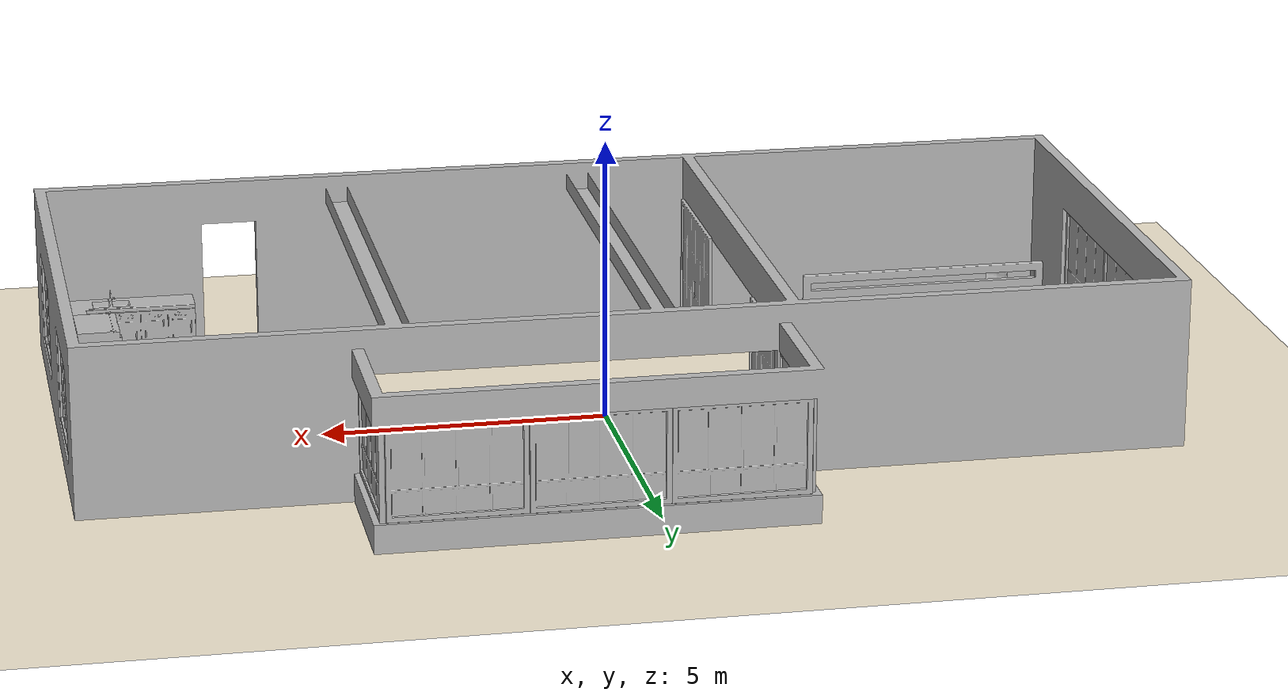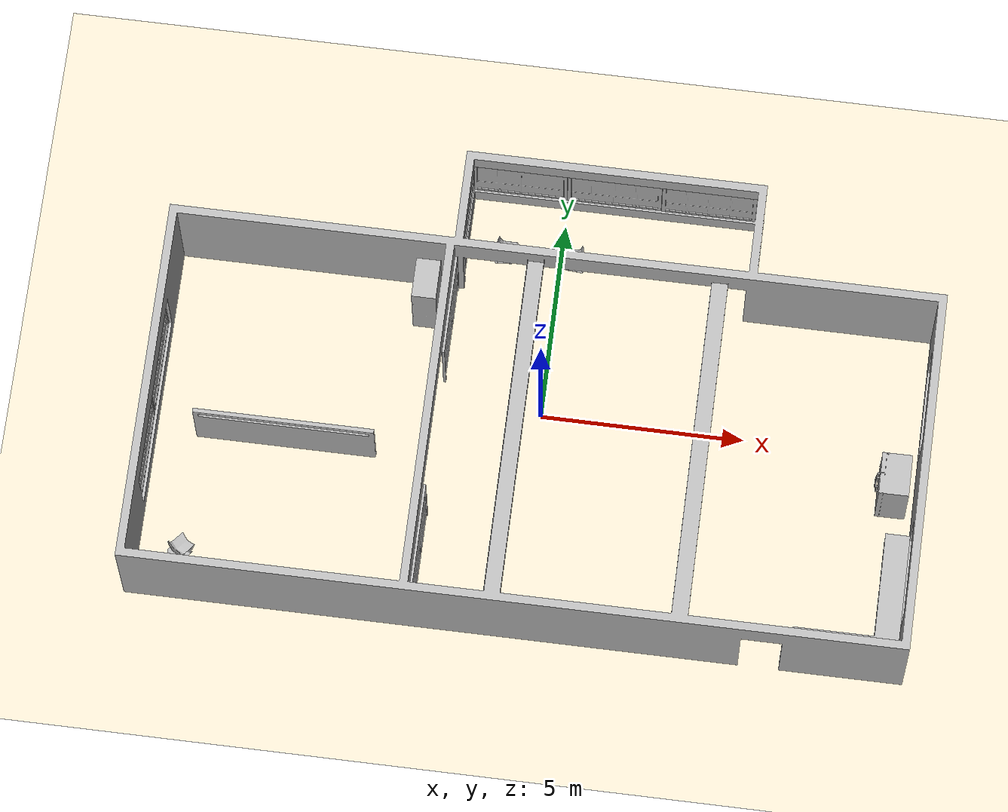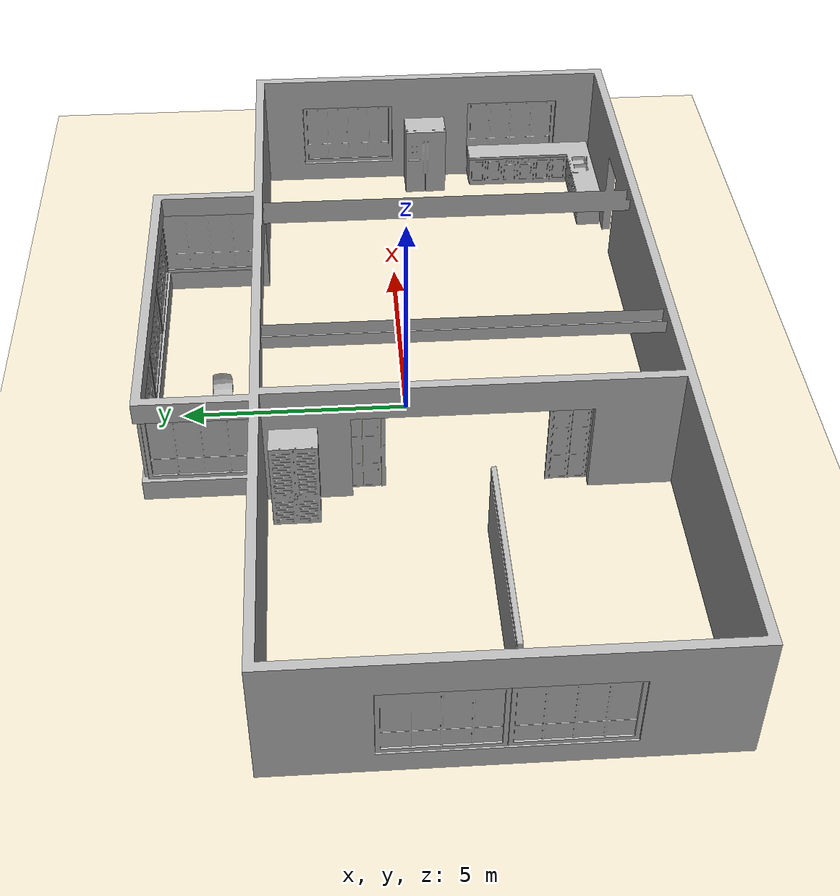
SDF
<sdf version="1.8">
 <world name="gazebo_world">
  <physics name="1ms" type="ignored">
   <max_step_size>0.001</max_step_size>
   <real_time_factor>1.0</real_time_factor>
   <real_time_update_rate>1000</real_time_update_rate>
  </physics>
  <plugin name="gz::sim::systems::Physics" filename="gz-sim-physics-system"/>
  <plugin name="gz::sim::systems::UserCommands" filename="gz-sim-user-commands-system"/>
  <plugin name="gz::sim::systems::SceneBroadcaster" filename="gz-sim-scene-broadcaster-system"/>
  <plugin filename="gz-sim-sensors-system" name="gz::sim::systems::Sensors">
   <render_engine>ogre2</render_engine>
  </plugin>
  <plugin filename="libgz-sim-contact-system.so" name="gz::sim::systems::Contact"/>
  <scene><ambient>1.0 1.0 1.0</ambient><background>0.8 0.8 0.8</background></scene>
  <light type="directional" name="sun">
   <pose>0 0 10 0 0 0</pose>
   <diffuse>0.8 0.8 0.8 1</diffuse>
   <specular>0.2 0.2 0.2 1</specular>
   <attenuation>
    <range>1000</range>
    <constant>0.9</constant>
    <linear>0.01</linear>
    <quadratic>0.001</quadratic>
   </attenuation>
   <direction>-0.5 0.1 -0.9</direction>
  </light>
  <model name="ground_plane">
   <static>true</static>
   <link name="link">
    <collision name="collision">
     <geometry><plane><normal>0 0 1</normal><size>100 100</size></plane></geometry>
    </collision>
    <visual name="visual">
     <geometry><plane><normal>0 0 1</normal><size>100 100</size></plane></geometry>
     <material>
      <ambient>0.94 0.90 0.81 1</ambient>
      <diffuse>0.94 0.90 0.81 1</diffuse>
      <specular>1 1 1 0</specular>
     </material>
    </visual>
   </link>
  </model>
  <model name="ChairD_01_001">
   <static>true</static>
   <include><uri>aws_robomaker_residential_ChairD_01</uri></include>
   <pose>-1.380775 4.104456 0 0 -0 0</pose>
  </model>
  <model name="ChairD_01_002">
   <static>true</static>
   <include><uri>aws_robomaker_residential_ChairD_01</uri></include>
   <pose>0.325214 4.104456 0 0 -0 -3.138741</pose>
  </model>
  <model name="ChairD_01_003">
   <static>true</static>
   <include><uri>aws_robomaker_residential_ChairD_01</uri></include>
   <pose>-8.270775 -4.504456 0 0 -0 0.869673</pose>
  </model>
  <model name="FoldingDoor_01_001">
   <static>true</static>
   <include><uri>aws_robomaker_residential_FoldingDoor_01</uri></include>
   <pose>-2.461096 1.844219 0.041881 0 -0 0</pose>
  </model>
  <model name="FoldingDoor_01_002">
   <static>true</static>
   <include><uri>aws_robomaker_residential_FoldingDoor_01</uri></include>
   <pose>-2.461096 -4.053320 0.041881 0 -0 0</pose>
  </model>
  <model name="HouseWallB_01_001">
   <static>true</static>
   <include><uri>aws_robomaker_residential_HouseWallB_01</uri></include>
  </model>
  <model name="KitchenCabinet_01_001">
   <static>true</static>
   <include><uri>aws_robomaker_residential_KitchenCabinet_01</uri></include>
   <pose>8.002009 -3.836509 0.012068 0 -0 -3.140001</pose>
  </model>
  <model name="Refrigerator_01_001">
   <static>true</static>
   <include><uri>aws_robomaker_residential_Refrigerator_01</uri></include>
   <pose>8.702731 -1.032031 0 0 -0 -1.563499</pose>
  </model>
  <model name="RoomWall_01_001">
   <static>true</static>
   <include><uri>aws_robomaker_residential_RoomWall_01</uri></include>
   <pose>-6.097550 -1.496180 0.028124 0 -0 0</pose>
  </model>
  <model name="Wardrobe_01_001">
   <static>true</static>
   <include><uri>aws_robomaker_residential_Wardrobe_01</uri></include>
   <pose>-3.146710 2.476204 0.000704 0 -0 -1.569673</pose>
  </model>
  <model name="RoomWindow_01_001">
   <static>true</static>
   <include><uri>aws_robomaker_residential_RoomWindow_01</uri></include>
   <pose>-9.418600 -0.026285 0.502739 0 -0 0</pose>
  </model>
  <model name="RoomWindow_01_002">
   <static>true</static>
   <include><uri>aws_robomaker_residential_RoomWindow_01</uri></include>
   <pose>-9.418600 -2.374090 0.502739 0 -0 0</pose>
  </model>
  <model name="RoomWindow_01_003">
   <static>true</static>
   <include><uri>aws_robomaker_residential_RoomWindow_01</uri></include>
   <pose>9.422616 -3.373981 0.502739 0 -0 -3.136099</pose>
  </model>
  <model name="RoomWindow_01_004">
   <static>true</static>
   <include><uri>aws_robomaker_residential_RoomWindow_01</uri></include>
   <pose>9.422558 0.968520 0.496581 0 -0 -3.136099</pose>
  </model>
  <model name="RoomWindow_01_005">
   <static>true</static>
   <include><uri>aws_robomaker_residential_RoomWindow_01</uri></include>
   <pose>4.722317 4.470281 0.502739 0 -0 -3.136099</pose>
  </model>
  <model name="RoomWindow_01_006">
   <static>true</static>
   <include><uri>aws_robomaker_residential_RoomWindow_01</uri></include>
   <pose>3.488520 5.600688 0.502739 0 -0 -1.566274</pose>
  </model>
  <model name="RoomWindow_01_007">
   <static>true</static>
   <include><uri>aws_robomaker_residential_RoomWindow_01</uri></include>
   <pose>1.140949 5.600688 0.502739 0 -0 -1.566274</pose>
  </model>
  <model name="RoomWindow_01_008">
   <static>true</static>
   <include><uri>aws_robomaker_residential_RoomWindow_01</uri></include>
   <pose>-1.199340 5.600688 0.502739 0 -0 -1.566274</pose>
  </model>
  <model name="RoomWindow_01_009">
   <static>true</static>
   <include><uri>aws_robomaker_residential_RoomWindow_01</uri></include>
   <pose>-2.396624 4.387607 0.502739 0 -0 0</pose>
  </model>
 </world>
</sdf>

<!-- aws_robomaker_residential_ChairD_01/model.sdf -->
<sdf version="1.6">
  <model name="aws_robomaker_residential_ChairD_01">
    <link name="link">

      <inertial>
        <mass>4.5</mass>
          <inertia>
            <ixy>0</ixy>
            <ixz>0</ixz>
            <iyz>0</iyz>
            <ixx>0.217</ixx>
            <iyy>0.217</iyy>
            <izz>0.067</izz>
          </inertia>
      </inertial>

      <collision name="collision">

        <geometry>
          <mesh>
            <uri>meshes/aws_ChairD_01_collision.DAE</uri>
            <scale>1 1 1</scale>
          </mesh>
        </geometry>

      </collision>
      <visual name="visual">
	    <geometry>
          <mesh>
            <uri>meshes/aws_ChairD_01_visual.DAE</uri>
          </mesh>
        </geometry>
      <meta> <layer> 1 </layer></meta>
</visual>
    </link>
  </model>
</sdf>

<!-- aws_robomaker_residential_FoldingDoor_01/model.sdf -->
<sdf version="1.6">
  <model name="aws_robomaker_residential_FoldingDoor_01">
    <link name="link">
      <inertial>
        <mass>1</mass>
      </inertial>
      <collision name="collision">
        <geometry>
          <mesh>
            <uri>meshes/aws_FoldingDoor_01_collision.DAE</uri>
            <scale>1 1 1</scale>
          </mesh>
        </geometry>
      </collision>
      <visual name="visual">
	    <geometry>
          <mesh>
            <uri>meshes/aws_FoldingDoor_01_visual.DAE</uri>
          </mesh>
        </geometry>
      <meta> <layer> 2 </layer></meta>
</visual>
    </link>
	<static>1</static>
  </model>
</sdf>

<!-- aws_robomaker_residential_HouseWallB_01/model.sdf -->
<sdf version="1.6">
  <model name="aws_robomaker_residential_HouseWallB_01">
    <link name="link">
      <inertial>
        <mass>1</mass>
      </inertial>
      <collision name="collision">
        <geometry>
          <mesh>
            <uri>meshes/aws_HouseWallB_01_collision.DAE</uri>
            <scale>1 1 1</scale>
          </mesh>
        </geometry>
      </collision>
      <visual name="visual">
	    <geometry>
          <mesh>
            <uri>meshes/aws_HouseWallB_01_visual.DAE</uri>
          </mesh>
        </geometry>
      <meta> <layer> 2 </layer></meta>
</visual>
    </link>
<static>1</static>
  </model>
</sdf>

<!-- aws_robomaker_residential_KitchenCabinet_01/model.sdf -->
<sdf version="1.6">
  <model name="aws_robomaker_residential_KitchenCabinet_01">
    <link name="link">
      <inertial>
        <mass>1</mass>
      </inertial>
      <collision name="collision">
        <laser_retro>0</laser_retro>
        <max_contacts>10</max_contacts>
        <geometry>
          <mesh>
            <uri>model://aws_robomaker_residential_KitchenCabinet_01/meshes/aws_KitchenCabinet_01_collision.DAE</uri>
            <scale>1 1 1</scale>
          </mesh>
        </geometry>
      </collision>
      <visual name="visual">
	    <geometry>
          <mesh>
            <uri>meshes/aws_KitchenCabinet_01_visual.DAE</uri>
          </mesh>
        </geometry>
      <meta> <layer> 1 </layer></meta>
</visual>
    </link>

    <static>1</static>
  </model>
</sdf>

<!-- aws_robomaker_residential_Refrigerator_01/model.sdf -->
<sdf version="1.6">
  <model name="aws_robomaker_residential_Refrigerator_01">
    <link name="link">
      <inertial>
        <mass>1</mass>
      </inertial>
      <collision name="collision">
        <geometry>
          <mesh>
            <uri>meshes/aws_Refrigerator_01_collision.DAE</uri>
            <scale>1 1 1</scale>
          </mesh>
        </geometry>
      </collision>
      <visual name="visual">
	    <geometry>
          <mesh>
            <uri>meshes/aws_Refrigerator_01_visual.DAE</uri>
          </mesh>
        </geometry>
      <meta> <layer> 1 </layer></meta>
</visual>
    </link>
    <static>1</static>
  </model>
</sdf>

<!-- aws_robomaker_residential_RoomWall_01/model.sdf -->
<sdf version="1.6">
  <model name="aws_robomaker_residential_RoomWall_01">
    <link name="link">
      <inertial>
        <mass>100</mass>
      </inertial>
      <collision name="collision">
        <geometry>
          <mesh>
            <uri>meshes/aws_RoomWall_01_collision.DAE</uri>
            <scale>1 1 1</scale>
          </mesh>
        </geometry>
      </collision>
      <visual name="visual">
	    <geometry>
          <mesh>
            <uri>meshes/aws_RoomWall_01_visual.DAE</uri>
          </mesh>
        </geometry>
      <meta> <layer> 2 </layer></meta>
</visual>
    </link>
  <static>1</static>
  </model>
</sdf>

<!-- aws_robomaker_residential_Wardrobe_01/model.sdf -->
<sdf version="1.6">
  <model name="aws_robomaker_residential_Wardrobe_01">
    <link name="link">
      <inertial>
        <mass>51.7</mass>
      </inertial>
      <collision name="collision">
        <geometry>
          <mesh>
            <uri>meshes/aws_Wardrobe_01_collision.DAE</uri>
            <scale>1 1 1</scale>
          </mesh>
        </geometry>
      </collision>
      <visual name="visual">
	    <geometry>
          <mesh>
            <uri>meshes/aws_Wardrobe_01_visual.DAE</uri>
          </mesh>
        </geometry>
      <meta> <layer> 1 </layer></meta>
</visual>
    </link>
    <static>1</static>
  </model>
</sdf>

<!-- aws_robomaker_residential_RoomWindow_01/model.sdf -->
<sdf version="1.6">
  <model name="aws_robomaker_residential_RoomWindow_01">
    <link name="link">
      <inertial>
        <mass>1</mass>
      </inertial>
      <collision name="collision">
        <geometry>
          <mesh>
            <uri>meshes/aws_RoomWindow_01_collision.DAE</uri>
            <scale>1 1 1</scale>
          </mesh>
        </geometry>
      </collision>
      <visual name="visual">
	    <geometry>
          <mesh>
            <uri>meshes/aws_RoomWindow_01_visual.DAE</uri>
          </mesh>
        </geometry>
      <meta> <layer> 2 </layer></meta>
</visual>
    </link>
	<static>1</static>
  </model>
</sdf>
